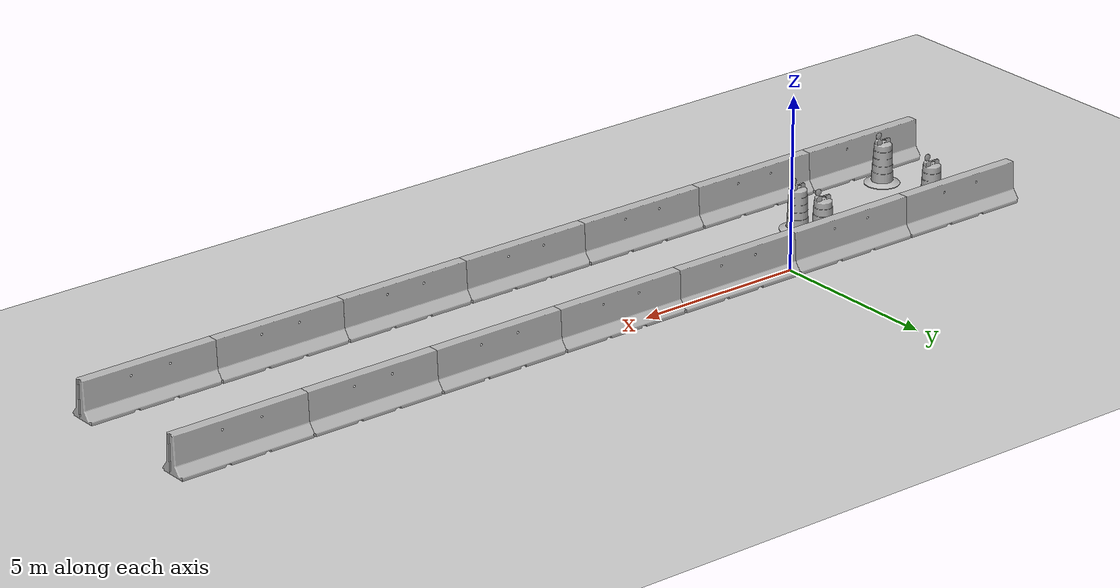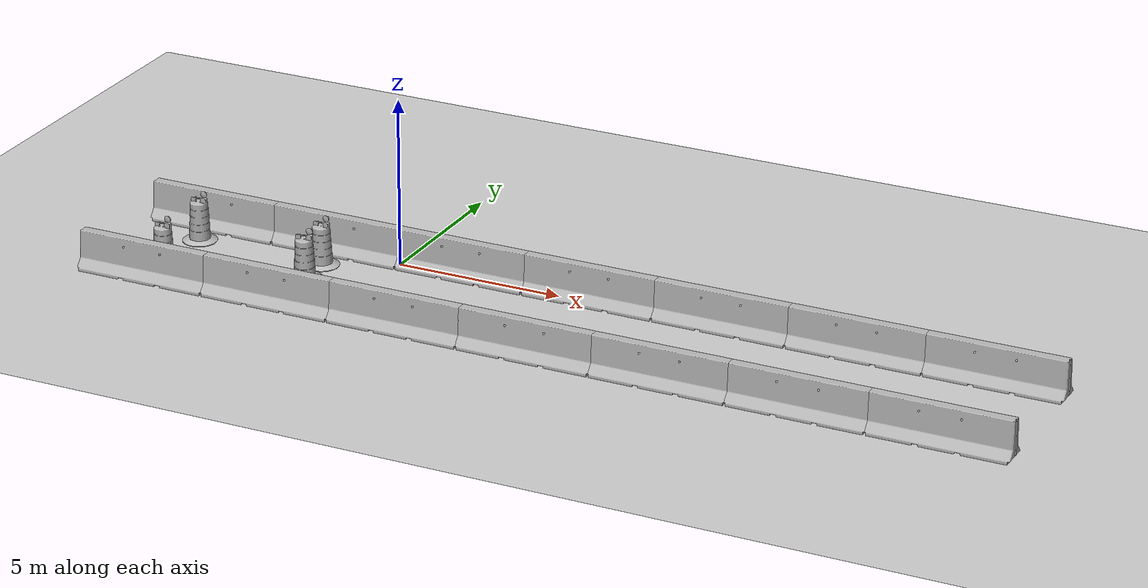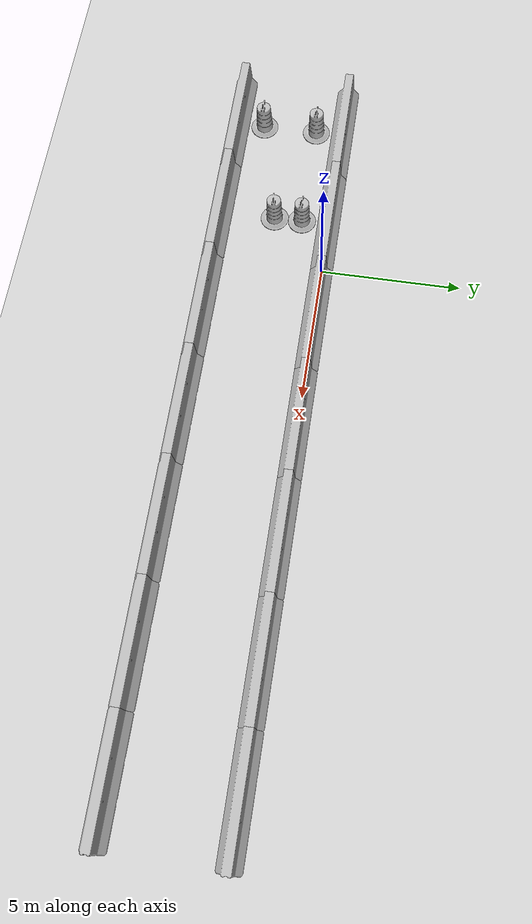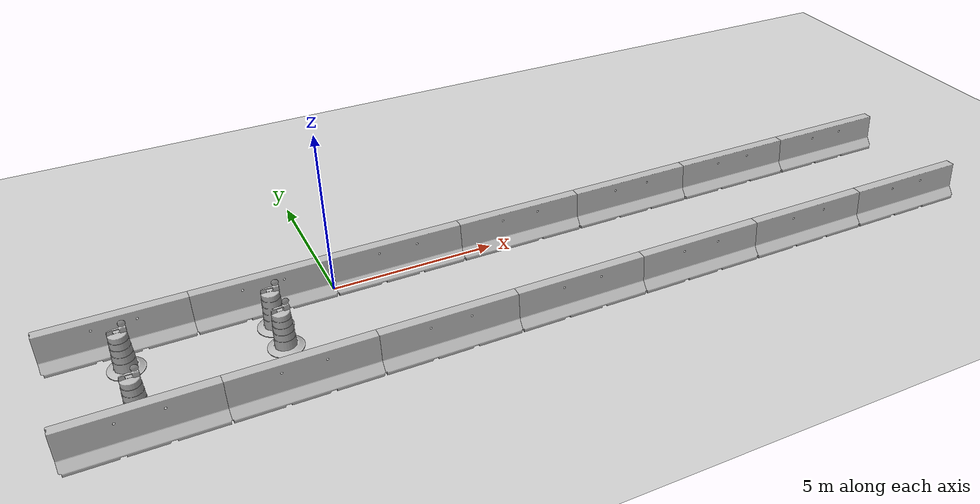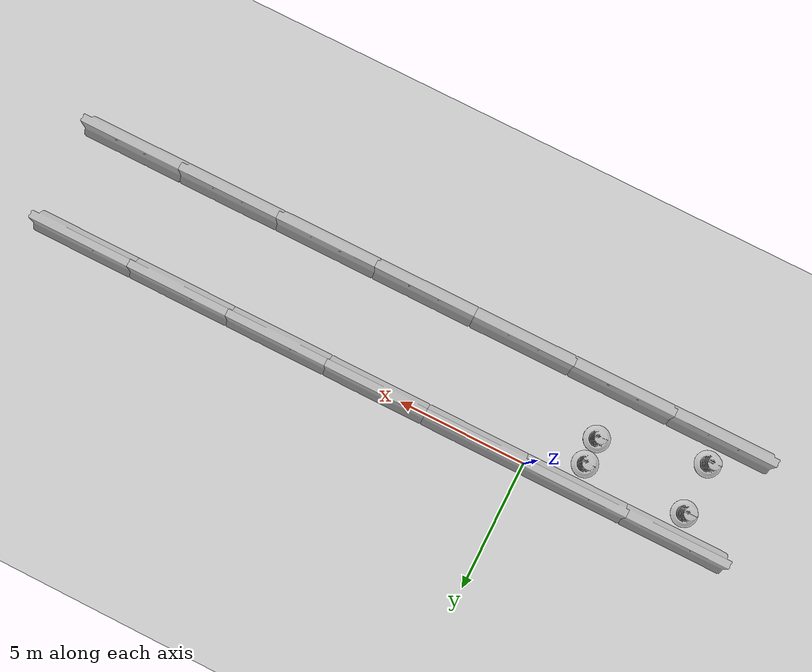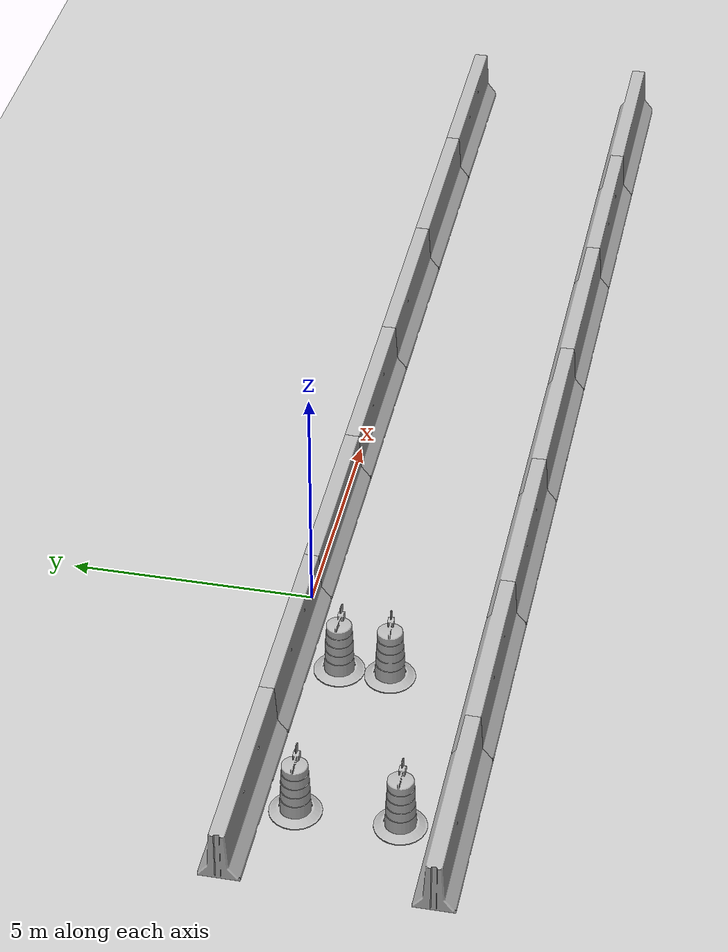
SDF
<sdf version="1.4">
 <world name="default">
  <model name="ground_plane">
   <static>1</static>
   <link name="link">
    <collision name="collision">
     <geometry><plane><normal>0 0 1</normal><size>100 100</size></plane></geometry>
     <surface><friction><ode><mu>100</mu><mu2>50</mu2></ode></friction></surface>
    </collision>
    <visual name="visual">
     <cast_shadows>0</cast_shadows>
     <geometry><plane><normal>0 0 1</normal><size>100 100</size></plane></geometry>
     <material>
      <script><uri>file://media/materials/scripts/gazebo.material</uri><name>Gazebo/Grey</name></script>
     </material>
    </visual>
    <velocity_decay><linear>0</linear><angular>0</angular></velocity_decay>
   </link>
  </model>
  <light name="sun" type="directional">
   <pose>0 0 10 0 -0 0</pose>
   <diffuse>0.8 0.8 0.8 1</diffuse>
   <specular>0.2 0.2 0.2 1</specular>
   <attenuation>
    <range>1000</range>
    <constant>0.9</constant>
    <linear>0.01</linear>
    <quadratic>0.001</quadratic>
   </attenuation>
   <direction>-0.5 0.1 -0.9</direction>
  </light>
  <physics type="ode">
   <max_step_size>0.001</max_step_size>
   <real_time_factor>1</real_time_factor>
   <real_time_update_rate>1000</real_time_update_rate>
   <gravity>0 0 -9.8</gravity>
  </physics>
  <scene><ambient>0.4 0.4 0.4 1</ambient><background>0.7 0.7 0.7 1</background><shadows>1</shadows></scene>
  <model name="jersey_barrier">
   <static>1</static>
   <link name="link">
    <visual name="visual">
     <geometry><mesh><uri>model://jersey_barrier/meshes/jersey_barrier.dae</uri></mesh></geometry>
    </visual>
    <collision name="upright">
     <pose>0 0 0.5715 0 -0 0</pose>
     <geometry><box><size>4.06542 0.3063 1.143</size></box></geometry>
    </collision>
    <collision name="base">
     <pose>0 0 0.032258 0 -0 0</pose>
     <geometry><box><size>4.06542 0.8107 0.064516</size></box></geometry>
    </collision>
    <collision name="base2">
     <pose>0 0 0.1 0 -0 0</pose>
     <geometry><box><size>4.06542 0.65 0.1</size></box></geometry>
    </collision>
    <collision name="base3">
     <pose>0 0 0.2 0 -0 0</pose>
     <geometry><box><size>4.06542 0.5 0.1</size></box></geometry>
    </collision>
    <collision name="left-angle">
     <pose>0 -0.224 0.2401 0.9 -0 0</pose>
     <geometry><box><size>4.06542 0.5 0.064516</size></box></geometry>
    </collision>
    <collision name="right-angle">
     <pose>0 0.224 0.2401 -0.9 0 0</pose>
     <geometry><box><size>4.06542 0.5 0.064516</size></box></geometry>
    </collision>
    <velocity_decay><linear>0</linear><angular>0</angular></velocity_decay>
   </link>
   <pose>2 0 0 0 -0 0</pose>
  </model>
  <model name="jersey_barrier_2">
   <static>1</static>
   <link name="link">
    <visual name="visual">
     <geometry><mesh><uri>model://jersey_barrier/meshes/jersey_barrier.dae</uri></mesh></geometry>
    </visual>
    <collision name="upright">
     <pose>0 0 0.5715 0 -0 0</pose>
     <geometry><box><size>4.06542 0.3063 1.143</size></box></geometry>
    </collision>
    <collision name="base">
     <pose>0 0 0.032258 0 -0 0</pose>
     <geometry><box><size>4.06542 0.8107 0.064516</size></box></geometry>
    </collision>
    <collision name="base2">
     <pose>0 0 0.1 0 -0 0</pose>
     <geometry><box><size>4.06542 0.65 0.1</size></box></geometry>
    </collision>
    <collision name="base3">
     <pose>0 0 0.2 0 -0 0</pose>
     <geometry><box><size>4.06542 0.5 0.1</size></box></geometry>
    </collision>
    <collision name="left-angle">
     <pose>0 -0.224 0.2401 0.9 -0 0</pose>
     <geometry><box><size>4.06542 0.5 0.064516</size></box></geometry>
    </collision>
    <collision name="right-angle">
     <pose>0 0.224 0.2401 -0.9 0 0</pose>
     <geometry><box><size>4.06542 0.5 0.064516</size></box></geometry>
    </collision>
    <velocity_decay><linear>0</linear><angular>0</angular></velocity_decay>
   </link>
   <pose>6 0 0 0 -0 0</pose>
  </model>
  <model name="jersey_barrier_3">
   <static>1</static>
   <link name="link">
    <visual name="visual">
     <geometry><mesh><uri>model://jersey_barrier/meshes/jersey_barrier.dae</uri></mesh></geometry>
    </visual>
    <collision name="upright">
     <pose>0 0 0.5715 0 -0 0</pose>
     <geometry><box><size>4.06542 0.3063 1.143</size></box></geometry>
    </collision>
    <collision name="base">
     <pose>0 0 0.032258 0 -0 0</pose>
     <geometry><box><size>4.06542 0.8107 0.064516</size></box></geometry>
    </collision>
    <collision name="base2">
     <pose>0 0 0.1 0 -0 0</pose>
     <geometry><box><size>4.06542 0.65 0.1</size></box></geometry>
    </collision>
    <collision name="base3">
     <pose>0 0 0.2 0 -0 0</pose>
     <geometry><box><size>4.06542 0.5 0.1</size></box></geometry>
    </collision>
    <collision name="left-angle">
     <pose>0 -0.224 0.2401 0.9 -0 0</pose>
     <geometry><box><size>4.06542 0.5 0.064516</size></box></geometry>
    </collision>
    <collision name="right-angle">
     <pose>0 0.224 0.2401 -0.9 0 0</pose>
     <geometry><box><size>4.06542 0.5 0.064516</size></box></geometry>
    </collision>
    <velocity_decay><linear>0</linear><angular>0</angular></velocity_decay>
   </link>
   <pose>6 -4 0 0 -0 0</pose>
  </model>
  <model name="jersey_barrier_4">
   <static>1</static>
   <link name="link">
    <visual name="visual">
     <geometry><mesh><uri>model://jersey_barrier/meshes/jersey_barrier.dae</uri></mesh></geometry>
    </visual>
    <collision name="upright">
     <pose>0 0 0.5715 0 -0 0</pose>
     <geometry><box><size>4.06542 0.3063 1.143</size></box></geometry>
    </collision>
    <collision name="base">
     <pose>0 0 0.032258 0 -0 0</pose>
     <geometry><box><size>4.06542 0.8107 0.064516</size></box></geometry>
    </collision>
    <collision name="base2">
     <pose>0 0 0.1 0 -0 0</pose>
     <geometry><box><size>4.06542 0.65 0.1</size></box></geometry>
    </collision>
    <collision name="base3">
     <pose>0 0 0.2 0 -0 0</pose>
     <geometry><box><size>4.06542 0.5 0.1</size></box></geometry>
    </collision>
    <collision name="left-angle">
     <pose>0 -0.224 0.2401 0.9 -0 0</pose>
     <geometry><box><size>4.06542 0.5 0.064516</size></box></geometry>
    </collision>
    <collision name="right-angle">
     <pose>0 0.224 0.2401 -0.9 0 0</pose>
     <geometry><box><size>4.06542 0.5 0.064516</size></box></geometry>
    </collision>
    <velocity_decay><linear>0</linear><angular>0</angular></velocity_decay>
   </link>
   <pose>2 -4 0 0 -0 0</pose>
  </model>
  <model name="jersey_barrier_5">
   <static>1</static>
   <link name="link">
    <visual name="visual">
     <geometry><mesh><uri>model://jersey_barrier/meshes/jersey_barrier.dae</uri></mesh></geometry>
    </visual>
    <collision name="upright">
     <pose>0 0 0.5715 0 -0 0</pose>
     <geometry><box><size>4.06542 0.3063 1.143</size></box></geometry>
    </collision>
    <collision name="base">
     <pose>0 0 0.032258 0 -0 0</pose>
     <geometry><box><size>4.06542 0.8107 0.064516</size></box></geometry>
    </collision>
    <collision name="base2">
     <pose>0 0 0.1 0 -0 0</pose>
     <geometry><box><size>4.06542 0.65 0.1</size></box></geometry>
    </collision>
    <collision name="base3">
     <pose>0 0 0.2 0 -0 0</pose>
     <geometry><box><size>4.06542 0.5 0.1</size></box></geometry>
    </collision>
    <collision name="left-angle">
     <pose>0 -0.224 0.2401 0.9 -0 0</pose>
     <geometry><box><size>4.06542 0.5 0.064516</size></box></geometry>
    </collision>
    <collision name="right-angle">
     <pose>0 0.224 0.2401 -0.9 0 0</pose>
     <geometry><box><size>4.06542 0.5 0.064516</size></box></geometry>
    </collision>
    <velocity_decay><linear>0</linear><angular>0</angular></velocity_decay>
   </link>
   <pose>-2 0 0 0 -0 0</pose>
  </model>
  <model name="jersey_barrier_6">
   <static>1</static>
   <link name="link">
    <visual name="visual">
     <geometry><mesh><uri>model://jersey_barrier/meshes/jersey_barrier.dae</uri></mesh></geometry>
    </visual>
    <collision name="upright">
     <pose>0 0 0.5715 0 -0 0</pose>
     <geometry><box><size>4.06542 0.3063 1.143</size></box></geometry>
    </collision>
    <collision name="base">
     <pose>0 0 0.032258 0 -0 0</pose>
     <geometry><box><size>4.06542 0.8107 0.064516</size></box></geometry>
    </collision>
    <collision name="base2">
     <pose>0 0 0.1 0 -0 0</pose>
     <geometry><box><size>4.06542 0.65 0.1</size></box></geometry>
    </collision>
    <collision name="base3">
     <pose>0 0 0.2 0 -0 0</pose>
     <geometry><box><size>4.06542 0.5 0.1</size></box></geometry>
    </collision>
    <collision name="left-angle">
     <pose>0 -0.224 0.2401 0.9 -0 0</pose>
     <geometry><box><size>4.06542 0.5 0.064516</size></box></geometry>
    </collision>
    <collision name="right-angle">
     <pose>0 0.224 0.2401 -0.9 0 0</pose>
     <geometry><box><size>4.06542 0.5 0.064516</size></box></geometry>
    </collision>
    <velocity_decay><linear>0</linear><angular>0</angular></velocity_decay>
   </link>
   <pose>-2 -4 0 0 -0 0</pose>
  </model>
  <model name="jersey_barrier_8">
   <static>1</static>
   <link name="link">
    <visual name="visual">
     <geometry><mesh><uri>model://jersey_barrier/meshes/jersey_barrier.dae</uri></mesh></geometry>
    </visual>
    <collision name="upright">
     <pose>0 0 0.5715 0 -0 0</pose>
     <geometry><box><size>4.06542 0.3063 1.143</size></box></geometry>
    </collision>
    <collision name="base">
     <pose>0 0 0.032258 0 -0 0</pose>
     <geometry><box><size>4.06542 0.8107 0.064516</size></box></geometry>
    </collision>
    <collision name="base2">
     <pose>0 0 0.1 0 -0 0</pose>
     <geometry><box><size>4.06542 0.65 0.1</size></box></geometry>
    </collision>
    <collision name="base3">
     <pose>0 0 0.2 0 -0 0</pose>
     <geometry><box><size>4.06542 0.5 0.1</size></box></geometry>
    </collision>
    <collision name="left-angle">
     <pose>0 -0.224 0.2401 0.9 -0 0</pose>
     <geometry><box><size>4.06542 0.5 0.064516</size></box></geometry>
    </collision>
    <collision name="right-angle">
     <pose>0 0.224 0.2401 -0.9 0 0</pose>
     <geometry><box><size>4.06542 0.5 0.064516</size></box></geometry>
    </collision>
    <velocity_decay><linear>0</linear><angular>0</angular></velocity_decay>
   </link>
   <pose>10 0 0 0 -0 0</pose>
  </model>
  <model name="jersey_barrier_9">
   <static>1</static>
   <link name="link">
    <visual name="visual">
     <geometry><mesh><uri>model://jersey_barrier/meshes/jersey_barrier.dae</uri></mesh></geometry>
    </visual>
    <collision name="upright">
     <pose>0 0 0.5715 0 -0 0</pose>
     <geometry><box><size>4.06542 0.3063 1.143</size></box></geometry>
    </collision>
    <collision name="base">
     <pose>0 0 0.032258 0 -0 0</pose>
     <geometry><box><size>4.06542 0.8107 0.064516</size></box></geometry>
    </collision>
    <collision name="base2">
     <pose>0 0 0.1 0 -0 0</pose>
     <geometry><box><size>4.06542 0.65 0.1</size></box></geometry>
    </collision>
    <collision name="base3">
     <pose>0 0 0.2 0 -0 0</pose>
     <geometry><box><size>4.06542 0.5 0.1</size></box></geometry>
    </collision>
    <collision name="left-angle">
     <pose>0 -0.224 0.2401 0.9 -0 0</pose>
     <geometry><box><size>4.06542 0.5 0.064516</size></box></geometry>
    </collision>
    <collision name="right-angle">
     <pose>0 0.224 0.2401 -0.9 0 0</pose>
     <geometry><box><size>4.06542 0.5 0.064516</size></box></geometry>
    </collision>
    <velocity_decay><linear>0</linear><angular>0</angular></velocity_decay>
   </link>
   <pose>10 -4 0 0 -0 0</pose>
  </model>
  <model name="jersey_barrier_10">
   <static>1</static>
   <link name="link">
    <visual name="visual">
     <geometry><mesh><uri>model://jersey_barrier/meshes/jersey_barrier.dae</uri></mesh></geometry>
    </visual>
    <collision name="upright">
     <pose>0 0 0.5715 0 -0 0</pose>
     <geometry><box><size>4.06542 0.3063 1.143</size></box></geometry>
    </collision>
    <collision name="base">
     <pose>0 0 0.032258 0 -0 0</pose>
     <geometry><box><size>4.06542 0.8107 0.064516</size></box></geometry>
    </collision>
    <collision name="base2">
     <pose>0 0 0.1 0 -0 0</pose>
     <geometry><box><size>4.06542 0.65 0.1</size></box></geometry>
    </collision>
    <collision name="base3">
     <pose>0 0 0.2 0 -0 0</pose>
     <geometry><box><size>4.06542 0.5 0.1</size></box></geometry>
    </collision>
    <collision name="left-angle">
     <pose>0 -0.224 0.2401 0.9 -0 0</pose>
     <geometry><box><size>4.06542 0.5 0.064516</size></box></geometry>
    </collision>
    <collision name="right-angle">
     <pose>0 0.224 0.2401 -0.9 0 0</pose>
     <geometry><box><size>4.06542 0.5 0.064516</size></box></geometry>
    </collision>
    <velocity_decay><linear>0</linear><angular>0</angular></velocity_decay>
   </link>
   <pose>14 0 0 0 -0 0</pose>
  </model>
  <model name="jersey_barrier_11">
   <static>1</static>
   <link name="link">
    <visual name="visual">
     <geometry><mesh><uri>model://jersey_barrier/meshes/jersey_barrier.dae</uri></mesh></geometry>
    </visual>
    <collision name="upright">
     <pose>0 0 0.5715 0 -0 0</pose>
     <geometry><box><size>4.06542 0.3063 1.143</size></box></geometry>
    </collision>
    <collision name="base">
     <pose>0 0 0.032258 0 -0 0</pose>
     <geometry><box><size>4.06542 0.8107 0.064516</size></box></geometry>
    </collision>
    <collision name="base2">
     <pose>0 0 0.1 0 -0 0</pose>
     <geometry><box><size>4.06542 0.65 0.1</size></box></geometry>
    </collision>
    <collision name="base3">
     <pose>0 0 0.2 0 -0 0</pose>
     <geometry><box><size>4.06542 0.5 0.1</size></box></geometry>
    </collision>
    <collision name="left-angle">
     <pose>0 -0.224 0.2401 0.9 -0 0</pose>
     <geometry><box><size>4.06542 0.5 0.064516</size></box></geometry>
    </collision>
    <collision name="right-angle">
     <pose>0 0.224 0.2401 -0.9 0 0</pose>
     <geometry><box><size>4.06542 0.5 0.064516</size></box></geometry>
    </collision>
    <velocity_decay><linear>0</linear><angular>0</angular></velocity_decay>
   </link>
   <pose>14 -4 0 0 -0 0</pose>
  </model>
  <model name="jersey_barrier_12">
   <static>1</static>
   <link name="link">
    <visual name="visual">
     <geometry><mesh><uri>model://jersey_barrier/meshes/jersey_barrier.dae</uri></mesh></geometry>
    </visual>
    <collision name="upright">
     <pose>0 0 0.5715 0 -0 0</pose>
     <geometry><box><size>4.06542 0.3063 1.143</size></box></geometry>
    </collision>
    <collision name="base">
     <pose>0 0 0.032258 0 -0 0</pose>
     <geometry><box><size>4.06542 0.8107 0.064516</size></box></geometry>
    </collision>
    <collision name="base2">
     <pose>0 0 0.1 0 -0 0</pose>
     <geometry><box><size>4.06542 0.65 0.1</size></box></geometry>
    </collision>
    <collision name="base3">
     <pose>0 0 0.2 0 -0 0</pose>
     <geometry><box><size>4.06542 0.5 0.1</size></box></geometry>
    </collision>
    <collision name="left-angle">
     <pose>0 -0.224 0.2401 0.9 -0 0</pose>
     <geometry><box><size>4.06542 0.5 0.064516</size></box></geometry>
    </collision>
    <collision name="right-angle">
     <pose>0 0.224 0.2401 -0.9 0 0</pose>
     <geometry><box><size>4.06542 0.5 0.064516</size></box></geometry>
    </collision>
    <velocity_decay><linear>0</linear><angular>0</angular></velocity_decay>
   </link>
   <pose>18 0 0 0 -0 0</pose>
  </model>
  <model name="jersey_barrier_13">
   <static>1</static>
   <link name="link">
    <visual name="visual">
     <geometry><mesh><uri>model://jersey_barrier/meshes/jersey_barrier.dae</uri></mesh></geometry>
    </visual>
    <collision name="upright">
     <pose>0 0 0.5715 0 -0 0</pose>
     <geometry><box><size>4.06542 0.3063 1.143</size></box></geometry>
    </collision>
    <collision name="base">
     <pose>0 0 0.032258 0 -0 0</pose>
     <geometry><box><size>4.06542 0.8107 0.064516</size></box></geometry>
    </collision>
    <collision name="base2">
     <pose>0 0 0.1 0 -0 0</pose>
     <geometry><box><size>4.06542 0.65 0.1</size></box></geometry>
    </collision>
    <collision name="base3">
     <pose>0 0 0.2 0 -0 0</pose>
     <geometry><box><size>4.06542 0.5 0.1</size></box></geometry>
    </collision>
    <collision name="left-angle">
     <pose>0 -0.224 0.2401 0.9 -0 0</pose>
     <geometry><box><size>4.06542 0.5 0.064516</size></box></geometry>
    </collision>
    <collision name="right-angle">
     <pose>0 0.224 0.2401 -0.9 0 0</pose>
     <geometry><box><size>4.06542 0.5 0.064516</size></box></geometry>
    </collision>
    <velocity_decay><linear>0</linear><angular>0</angular></velocity_decay>
   </link>
   <pose>18 -4 0 0 -0 0</pose>
  </model>
  <model name="jersey_barrier_14">
   <static>1</static>
   <link name="link">
    <visual name="visual">
     <geometry><mesh><uri>model://jersey_barrier/meshes/jersey_barrier.dae</uri></mesh></geometry>
    </visual>
    <collision name="upright">
     <pose>0 0 0.5715 0 -0 0</pose>
     <geometry><box><size>4.06542 0.3063 1.143</size></box></geometry>
    </collision>
    <collision name="base">
     <pose>0 0 0.032258 0 -0 0</pose>
     <geometry><box><size>4.06542 0.8107 0.064516</size></box></geometry>
    </collision>
    <collision name="base2">
     <pose>0 0 0.1 0 -0 0</pose>
     <geometry><box><size>4.06542 0.65 0.1</size></box></geometry>
    </collision>
    <collision name="base3">
     <pose>0 0 0.2 0 -0 0</pose>
     <geometry><box><size>4.06542 0.5 0.1</size></box></geometry>
    </collision>
    <collision name="left-angle">
     <pose>0 -0.224 0.2401 0.9 -0 0</pose>
     <geometry><box><size>4.06542 0.5 0.064516</size></box></geometry>
    </collision>
    <collision name="right-angle">
     <pose>0 0.224 0.2401 -0.9 0 0</pose>
     <geometry><box><size>4.06542 0.5 0.064516</size></box></geometry>
    </collision>
    <velocity_decay><linear>0</linear><angular>0</angular></velocity_decay>
   </link>
   <pose>-6 0 0 0 -0 0</pose>
  </model>
  <model name="jersey_barrier_15">
   <static>1</static>
   <link name="link">
    <visual name="visual">
     <geometry><mesh><uri>model://jersey_barrier/meshes/jersey_barrier.dae</uri></mesh></geometry>
    </visual>
    <collision name="upright">
     <pose>0 0 0.5715 0 -0 0</pose>
     <geometry><box><size>4.06542 0.3063 1.143</size></box></geometry>
    </collision>
    <collision name="base">
     <pose>0 0 0.032258 0 -0 0</pose>
     <geometry><box><size>4.06542 0.8107 0.064516</size></box></geometry>
    </collision>
    <collision name="base2">
     <pose>0 0 0.1 0 -0 0</pose>
     <geometry><box><size>4.06542 0.65 0.1</size></box></geometry>
    </collision>
    <collision name="base3">
     <pose>0 0 0.2 0 -0 0</pose>
     <geometry><box><size>4.06542 0.5 0.1</size></box></geometry>
    </collision>
    <collision name="left-angle">
     <pose>0 -0.224 0.2401 0.9 -0 0</pose>
     <geometry><box><size>4.06542 0.5 0.064516</size></box></geometry>
    </collision>
    <collision name="right-angle">
     <pose>0 0.224 0.2401 -0.9 0 0</pose>
     <geometry><box><size>4.06542 0.5 0.064516</size></box></geometry>
    </collision>
    <velocity_decay><linear>0</linear><angular>0</angular></velocity_decay>
   </link>
   <pose>-6 -4 0 0 -0 0</pose>
  </model>
  <model name="Construction Barrel">
   <link name="link">
    <inertial>
     <pose>0 0 0.4 0 -0 0</pose>
     <mass>500</mass>
     <inertia><ixx>51.2096</ixx><iyy>51.2096</iyy><izz>25</izz><ixy>0</ixy><ixz>0</ixz><iyz>0</iyz></inertia>
    </inertial>
    <collision name="collision">
     <geometry><mesh><uri>model://construction_barrel/meshes/construction_barrel.dae</uri></mesh></geometry>
    </collision>
    <visual name="visual">
     <geometry><mesh><uri>model://construction_barrel/meshes/construction_barrel.dae</uri></mesh></geometry>
    </visual>
    <velocity_decay><linear>0</linear><angular>0</angular></velocity_decay>
   </link>
   <pose>-6.00003 -1.00001 -1e-06 3e-06 1e-05 -7e-06</pose>
   <static>0</static>
  </model>
  <model name="Construction Barrel_0">
   <link name="link">
    <inertial>
     <pose>0 0 0.4 0 -0 0</pose>
     <mass>500</mass>
     <inertia><ixx>51.2096</ixx><iyy>51.2096</iyy><izz>25</izz><ixy>0</ixy><ixz>0</ixz><iyz>0</iyz></inertia>
    </inertial>
    <collision name="collision">
     <geometry><mesh><uri>model://construction_barrel/meshes/construction_barrel.dae</uri></mesh></geometry>
    </collision>
    <visual name="visual">
     <geometry><mesh><uri>model://construction_barrel/meshes/construction_barrel.dae</uri></mesh></geometry>
    </visual>
    <velocity_decay><linear>0</linear><angular>0</angular></velocity_decay>
   </link>
   <pose>-6.00002 -3.00001 1e-06 2e-06 3e-06 -6e-06</pose>
   <static>0</static>
  </model>
  <model name="Construction Barrel_1">
   <link name="link">
    <inertial>
     <pose>0 0 0.4 0 -0 0</pose>
     <mass>500</mass>
     <inertia><ixx>51.2096</ixx><iyy>51.2096</iyy><izz>25</izz><ixy>0</ixy><ixz>0</ixz><iyz>0</iyz></inertia>
    </inertial>
    <collision name="collision">
     <geometry><mesh><uri>model://construction_barrel/meshes/construction_barrel.dae</uri></mesh></geometry>
    </collision>
    <visual name="visual">
     <geometry><mesh><uri>model://construction_barrel/meshes/construction_barrel.dae</uri></mesh></geometry>
    </visual>
    <velocity_decay><linear>0</linear><angular>0</angular></velocity_decay>
   </link>
   <pose>-2.00519 -0.992636 -5e-06 -7e-06 -1e-05 -0.073032</pose>
   <static>0</static>
  </model>
  <model name="Construction Barrel_2">
   <link name="link">
    <inertial>
     <pose>0 0 0.4 0 -0 0</pose>
     <mass>500</mass>
     <inertia><ixx>51.2096</ixx><iyy>51.2096</iyy><izz>25</izz><ixy>0</ixy><ixz>0</ixz><iyz>0</iyz></inertia>
    </inertial>
    <collision name="collision">
     <geometry><mesh><uri>model://construction_barrel/meshes/construction_barrel.dae</uri></mesh></geometry>
    </collision>
    <visual name="visual">
     <geometry><mesh><uri>model://construction_barrel/meshes/construction_barrel.dae</uri></mesh></geometry>
    </visual>
    <velocity_decay><linear>0</linear><angular>0</angular></velocity_decay>
   </link>
   <pose>-1.99169 -2.00953 -0 0 -0 0.102349</pose>
   <static>0</static>
  </model>
 </world>
</sdf>
